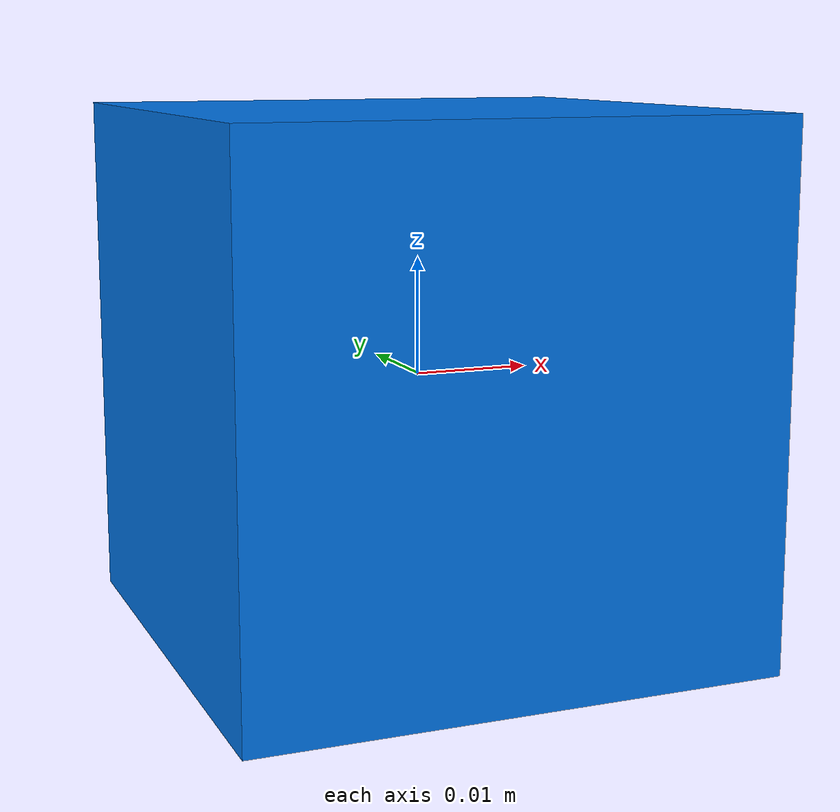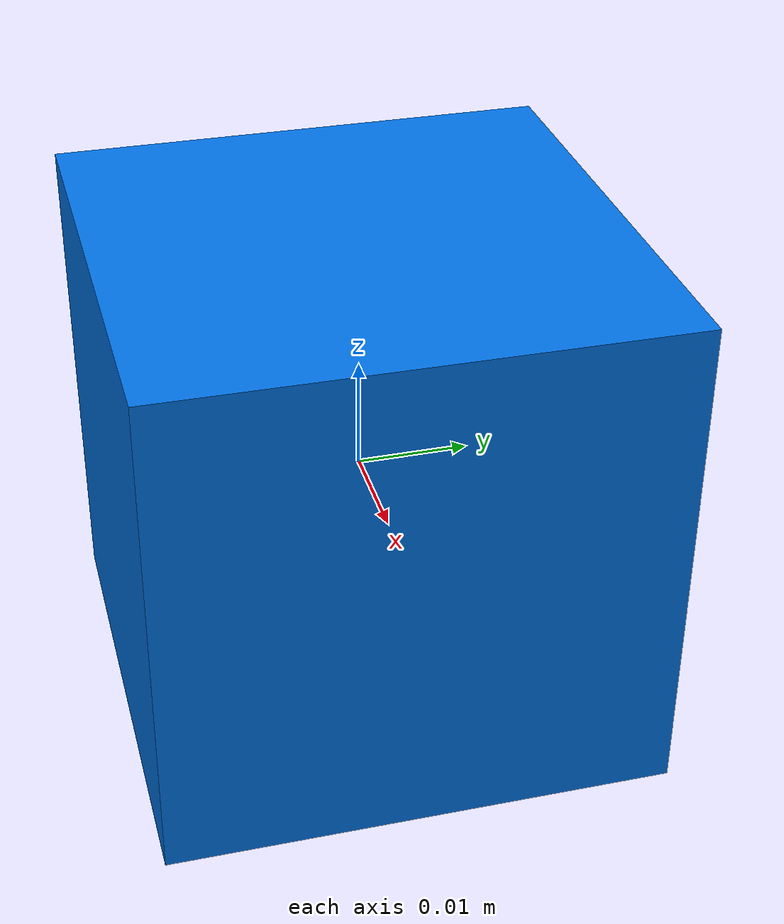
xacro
<?xml version="1.0"?>
<robot xmlns:xacro="http://ros.org/wiki/xacro" name="child_link">
  <xacro:property name="cube_size" value="0.045"/>
  <xacro:property name="cube_mass" value="0.15"/>

  <link name="child_link">
    <visual>
      <geometry>
        <box size="${cube_size} ${cube_size} ${cube_size}"/>
      </geometry>
      <material name="blue">
        <color rgba="0 0.45 0.9 1"/>
      </material>
    </visual>
    <collision>
      <geometry>
        <box size="${cube_size} ${cube_size} ${cube_size}"/>
      </geometry>
    </collision>
    <inertial>
      <mass value="${cube_mass}"/>
      <origin xyz="0 0 0" rpy="0 0 0"/>
      <inertia ixx="${cube_mass * cube_size**2 / 6}" ixy="0.0" ixz="0.0"
               iyy="${cube_mass * cube_size**2 / 6}" iyz="0.0"
               izz="${cube_mass * cube_size**2 / 6}"/>
    </inertial>
  </link>

  <!-- Gazebo properties for the schunk cube -->
  <gazebo reference="child_link">
    <visual>
      <material>
        <ambient>0 0.45 0.9 1</ambient>
        <diffuse>0 0.45 0.9 1</diffuse>
        <specular>0.5 0.5 0.5 1</specular>
      </material>
    </visual>
    <collision>
      <surface>
        <friction>
          <ode>
            <mu>0.8</mu>
            <mu2>0.8</mu2>
          </ode>
        </friction>
      </surface>
    </collision>
  <gravity>0</gravity>
  <static>true</static>
  </gazebo>

</robot>
